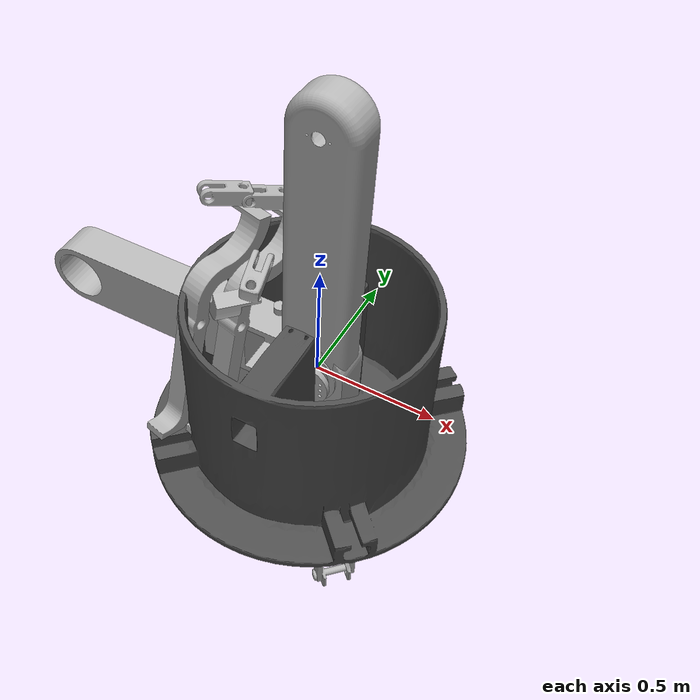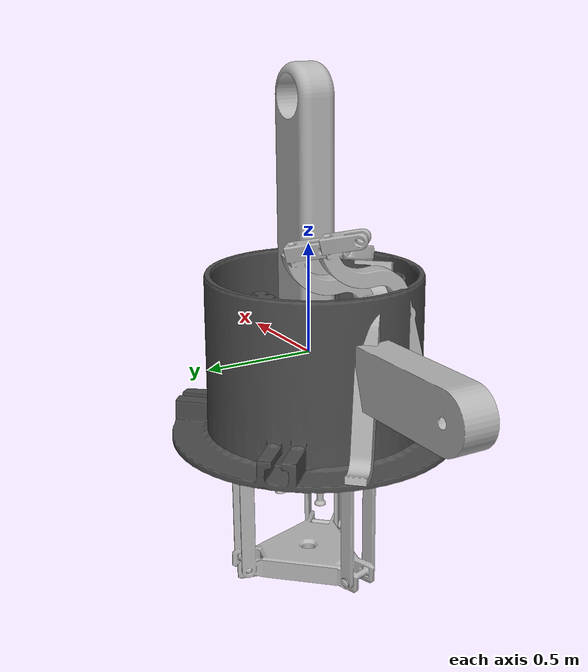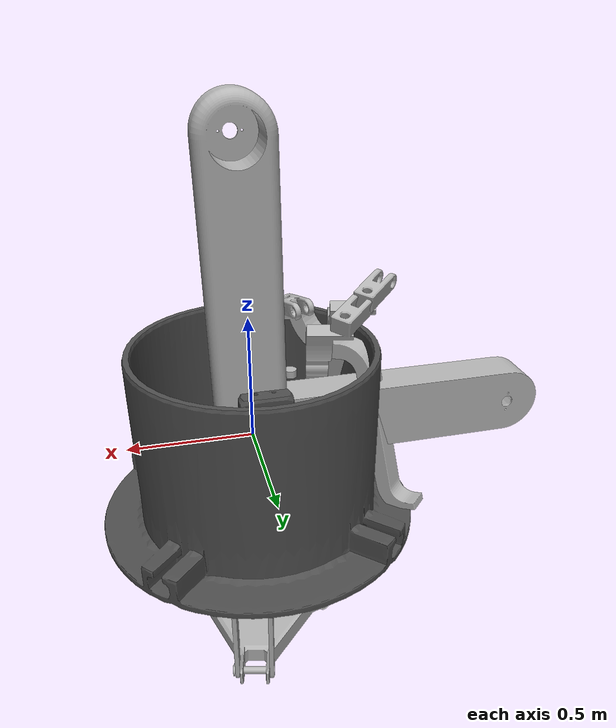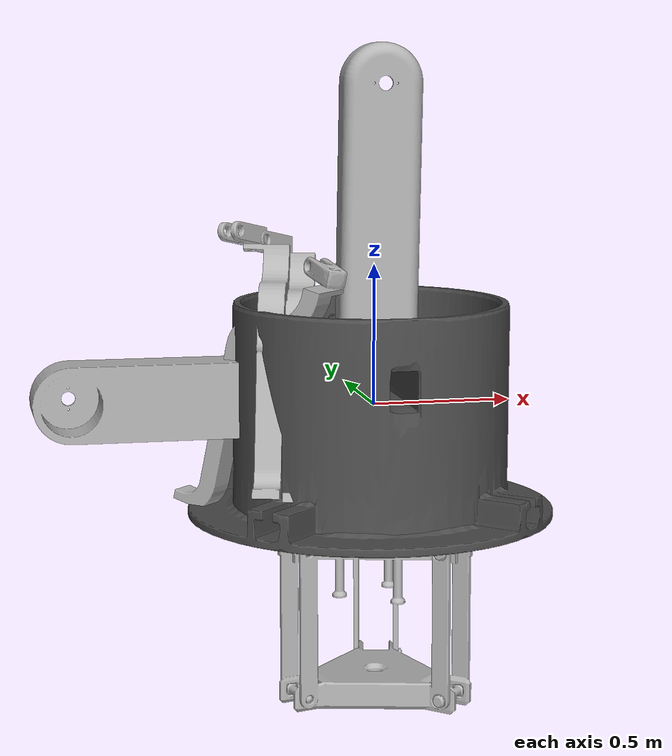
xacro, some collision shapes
<?xml version="1.0"?>
<robot name="arduinobot" xmlns:xacro="http://www.ros.org/wiki/xacro">

    <!-- Define common properties -->
    <xacro:property name="PI" value="3.141592653589793"/>
    <xacro:property name="PI_2" value="${PI / 2.0}"/>
    <xacro:property name="PI_4" value="${PI / 4.0}"/>
    <xacro:property name="effort" value="30.0"/>
    <xacro:property name="velocity" value="10.0"/>

    <!-- Include the base robot description -->
    <xacro:include filename="$(find arduinobot_description)/urdf/arduinobot.urdf.xacro"/>

    <!-- Include the ros2_control elements -->
    <xacro:include filename="$(find arduinobot_description)/urdf/arduinobot_ros2_control.xacro"/>

    <!-- Include the Gazebo specific elements -->
    <xacro:include filename="$(find arduinobot_description)/urdf/arduinobot_gazebo.xacro"/>

</robot>

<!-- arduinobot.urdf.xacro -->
<robot xmlns:xacro="http://www.ros.org/wiki/xacro" name="arduinobot">

    <xacro:arg name="use_gazebo" default="false"/>

    <!-- Include properties first -->
    <xacro:include filename="$(find arduinobot_description)/urdf/properties.xacro"/>

    <!-- Import robot parts -->
    <xacro:include filename="$(find arduinobot_description)/urdf/base_and_base_plate.xacro"/>
    <xacro:include filename="$(find arduinobot_description)/urdf/arms.xacro"/>
    <xacro:include filename="$(find arduinobot_description)/urdf/connectors.xacro"/>
    <xacro:include filename="$(find arduinobot_description)/urdf/grippers.xacro"/>

    <!-- Import Gazebo elements if needed -->
    <xacro:if value="$(arg use_gazebo)">
        <xacro:include filename="$(find arduinobot_description)/urdf/arduinobot_gazebo.xacro"/>
    </xacro:if>

</robot>

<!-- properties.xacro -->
<robot xmlns:xacro="http://www.ros.org/wiki/xacro">
    <!-- Constants -->
    <xacro:property name="PI" value="3.14159"/>
    <xacro:property name="PI_2" value="${PI/2}"/>
    <xacro:property name="PI_4" value="${PI/4}"/>

    <!-- Joint properties -->
    <xacro:property name="effort" value="30.0"/>
    <xacro:property name="velocity" value="10.0"/>

    <!-- Mark that properties are included -->
    <xacro:property name="properties_included" value="1"/>
</robot>

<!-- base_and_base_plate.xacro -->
<robot xmlns:xacro="http://www.ros.org/wiki/xacro" name="arduinobot">

    <link name="world"/>
    <!-- Base Link -->
    <link name="base_link">
        <visual>
            <origin rpy="0 0 0" xyz="0 0 0"/>
            <geometry>
                <mesh filename="package://arduinobot_description/meshes/basement_1.dae" scale="5 5 5"/>
            </geometry>
            <material name="dark_grey">
                <color rgba="0.3 0.3 0.3 1.0"/>
            </material>
        </visual>
        <collision>
            <origin rpy="0 0 0" xyz="0 0 0"/>
            <geometry>
                <cylinder radius="0.06" length="0.04"/>
            </geometry>
        </collision>
        <inertial>
            <origin xyz="0 0 0.02" rpy="0 0 0"/>
            <mass value="0.5"/>
            <inertia ixx="0.00015" ixy="0.0" ixz="0.0"
                    iyy="0.00015" iyz="0.0"
                    izz="0.00025"/>
        </inertial>
    </link>

    <joint name="virtual_joint" type="fixed">
        <parent link="world"/>
        <child link="base_link"/>
        <origin rpy="0 0 0" xyz="0 0 0"/>
    </joint>

    <!-- Base Plate -->
    <link name="base_plate">
        <visual>
            <origin rpy="0 0 0" xyz="0 0 0"/>
            <geometry>
                <mesh filename="package://arduinobot_description/meshes/base_plate_2.dae" scale="5 5 5"/>
            </geometry>
            <material name="blue">
                <color rgba="0.2 0.2 0.8 1.0"/>
            </material>
        </visual>
        <collision>
            <origin rpy="0 0 0" xyz="0 0 0"/>
            <geometry>
                <cylinder radius="0.04" length="0.04"/>
            </geometry>
        </collision>
        <inertial>
            <origin xyz="0 0 0" rpy="0 0 0"/>
            <mass value="0.3"/>
            <inertia ixx="0.0001" ixy="0.0" ixz="0.0"
                    iyy="0.0001" iyz="0.0"
                    izz="0.00015"/>
        </inertial>
    </link>

    <joint name="base_to_base_plate" type="revolute">
        <parent link="base_link"/>
        <child link="base_plate"/>
        <origin rpy="0 0 0" xyz="0 0 0.009"/>
        <axis xyz="0 0 1"/>
        <limit lower="-${PI_2}" upper="${PI_2}" effort="${effort}" velocity="${velocity}"/>
        <dynamics damping="0.5" friction="0.1"/>
    </joint>
</robot>

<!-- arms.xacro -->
<robot xmlns:xacro="http://www.ros.org/wiki/xacro">

    <!-- Include properties file -->
    <xacro:include filename="$(find arduinobot_description)/urdf/properties.xacro"/>

    <!-- Arm 1 -->
    <link name="arm_1">
        <visual>
            <origin rpy="0 0 0" xyz="0 0 0"/>
            <geometry>
                <mesh filename="package://arduinobot_description/meshes/arm_1.dae" scale="5 5 5"/>
            </geometry>
            <material name="grey">
                <color rgba="0.7 0.7 0.7 1.0"/>
            </material>
        </visual>
        <collision>
            <origin rpy="0 0 0" xyz="0 0 0"/>
            <geometry>
                <box size="0.03 0.03 0.15"/>
            </geometry>
        </collision>
        <inertial>
            <origin xyz="0 0 0" rpy="0 0 0"/>
            <mass value="0.25"/>
            <inertia ixx="0.0003" ixy="0.0" ixz="0.0"
                    iyy="0.0003" iyz="0.0"
                    izz="0.00001"/>
        </inertial>
    </link>

    <joint name="base_plate_to_arm_1" type="revolute">
        <parent link="base_plate"/>
        <child link="arm_1"/>
        <origin rpy="0 0 0" xyz="0 0 0.0012"/>
        <axis xyz="0 1 0"/>
        <limit lower="-${PI/3}" upper="${PI/3}" effort="${effort}" velocity="${velocity}"/>
        <dynamics damping="0.5" friction="0.1"/>
    </joint>

    <!-- Arm 2 -->
    <link name="arm_2">
        <visual>
            <origin rpy="0 0 0" xyz="0 0 0"/>
            <geometry>
                <mesh filename="package://arduinobot_description/meshes/arm_2.dae" scale="5 5 5"/>
            </geometry>
            <material name="grey">
                <color rgba="0.7 0.7 0.7 1.0"/>
            </material>
        </visual>
        <collision>
            <origin rpy="0 0 0" xyz="0 0 0"/>
            <geometry>
                <box size="0.03 0.03 0.15"/>
            </geometry>
        </collision>
        <inertial>
            <origin xyz="0 0 0" rpy="0 0 0"/>
            <mass value="0.2"/>
            <inertia ixx="0.0002" ixy="0.0" ixz="0.0"
                    iyy="0.0002" iyz="0.0"
                    izz="0.00001"/>
        </inertial>
    </link>

    <joint name="arm_1_to_arm_2" type="revolute">
        <parent link="arm_1"/>
        <child link="arm_2"/>
        <origin rpy="0 0 0" xyz="0 0 0.035"/>
        <axis xyz="0 1 0"/>
        <limit lower="-${PI/3}" upper="${PI/3}" effort="${effort}" velocity="${velocity}"/>
        <dynamics damping="0.5" friction="0.1"/>
    </joint>

    <!-- Arm 3 -->
    <link name="arm_3">
        <visual>
            <origin rpy="0 0 0" xyz="0 0 0"/>
            <geometry>
                <mesh filename="package://arduinobot_description/meshes/arm_3.dae" scale="5 5 5"/>
            </geometry>
            <material name="grey">
                <color rgba="0.7 0.7 0.7 1.0"/>
            </material>
        </visual>
        <collision>
            <origin rpy="0 0 0" xyz="0 0 0"/>
            <geometry>
                <box size="0.03 0.03 0.15"/>
            </geometry>
        </collision>
        <inertial>
            <origin xyz="0 0 0" rpy="0 0 0"/>
            <mass value="0.15"/>
            <inertia ixx="0.0002" ixy="0.0" ixz="0.0"
                    iyy="0.0002" iyz="0.0"
                    izz="0.00001"/>
        </inertial>
    </link>

    <joint name="arm_2_to_arm_3" type="revolute">
        <parent link="arm_2"/>
        <child link="arm_3"/>
        <origin rpy="0 0 0" xyz="0 0 0.035"/>
        <axis xyz="0 1 0"/>
        <limit lower="-${PI_2}" upper="${PI_2}" effort="${effort}" velocity="${velocity}"/>
        <dynamics damping="0.5" friction="0.1"/>
    </joint>

</robot>

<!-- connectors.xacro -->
<robot xmlns:xacro="http://ros.org/wiki/xacro">
    <!-- inner_circle -->
    <link name="inner_circle">
        <visual>
            <origin rpy="0 0 0" xyz="0 0 0"/>
            <geometry>
                <mesh filename="package://arduinobot_description/meshes/inner_circle.dae" scale="5 5 5"/>
            </geometry>
            <material name="grey">
                <color rgba="0.7 0.7 0.7 1.0"/>
            </material>
        </visual>
        <collision>
            <origin rpy="0 0 0" xyz="0 0 0"/>
            <geometry>
                <cylinder radius="0.025" length="0.03"/>
            </geometry>
        </collision>
        <inertial>
            <origin xyz="0 0 0" rpy="0 0 0"/>
            <mass value="0.1"/>
            <inertia ixx="0.00001" ixy="0.0" ixz="0.0"
                    iyy="0.00001" iyz="0.0"
                    izz="0.00001"/>
        </inertial>
    </link>

    <joint name="arm_2_to_inner_circle" type="revolute">
        <parent link="arm_2"/>
        <child link="inner_circle"/>
        <origin rpy="0 0 0" xyz="-0.16 -0.01 0.21"/>
        <axis xyz="1 0 0"/>
        <limit lower="-${PI}" upper="0.0" effort="${effort}" velocity="${velocity}"/>
        <dynamics damping="0.5" friction="0.1"/>
    </joint>

</robot>

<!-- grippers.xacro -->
<robot xmlns:xacro="http://www.ros.org/wiki/xacro">

    <!-- Gripper Links -->
    <link name="gripper_1">
        <visual>
            <origin rpy="0 0 0" xyz="0 0 0"/>
            <geometry>
                <mesh filename="package://arduinobot_description/meshes/gripper_1.dae" scale="5 5 5"/>
            </geometry>
            <material name="grey">
                <color rgba="0.7 0.7 0.7 1.0"/>
            </material>
        </visual>
        <collision>
            <origin rpy="0 0 0" xyz="0 0 0"/>
            <geometry>
                <box size="0.02 0.04 0.02"/>
            </geometry>
        </collision>
        <inertial>
            <origin xyz="0 0 0" rpy="0 0 0"/>
            <mass value="0.05"/>
            <inertia ixx="0.00001" ixy="0.0" ixz="0.0"
                    iyy="0.00002" iyz="0.0"
                    izz="0.00001"/>
        </inertial>
    </link>

    <link name="gripper_2">
        <visual>
            <origin rpy="0 0 0" xyz="0 0 0"/>
            <geometry>
                <mesh filename="package://arduinobot_description/meshes/gripper_2.dae" scale="5 5 5"/>
            </geometry>
            <material name="grey"/>
        </visual>
        <collision>
            <origin rpy="0 0 0" xyz="0 0 0"/>
            <geometry>
                <box size="0.02 0.04 0.02"/>
            </geometry>
        </collision>
        <inertial>
            <origin xyz="0 0 0" rpy="0 0 0"/>
            <mass value="0.05"/>
            <inertia ixx="0.00001" ixy="0.0" ixz="0.0"
                    iyy="0.00002" iyz="0.0"
                    izz="0.00001"/>
        </inertial>
    </link>

    <link name="gripper_3">
        <visual>
            <origin rpy="0 0 0" xyz="0 0 0"/>
            <geometry>
                <mesh filename="package://arduinobot_description/meshes/gripper_3.dae" scale="5 5 5"/>
            </geometry>
            <material name="grey"/>
        </visual>
        <collision>
            <origin rpy="0 0 0" xyz="0 0 0"/>
            <geometry>
                <box size="0.02 0.04 0.02"/>
            </geometry>
        </collision>
        <inertial>
            <origin xyz="0 0 0" rpy="0 0 0"/>
            <mass value="0.05"/>
            <inertia ixx="0.00001" ixy="0.0" ixz="0.0"
                    iyy="0.00002" iyz="0.0"
                    izz="0.00001"/>
        </inertial>
    </link>

    <!-- Gripper Joints -->
    <joint name="inner_circle_to_gripper_1" type="revolute">
        <parent link="inner_circle"/>
        <child link="gripper_1"/>
        <origin rpy="0 0 0" xyz="-0.08 -0.06 0.19"/>
        <axis xyz="1 0 0"/>
        <limit lower="-${PI/2}" upper="${PI/2}" effort="${effort}" velocity="${velocity}"/>
        <mimic joint="arm_2_to_inner_circle" multiplier="-1" offset="0"/>
        <dynamics damping="0.5" friction="0.1"/>
    </joint>

    <joint name="inner_circle_to_gripper_2" type="revolute">
        <parent link="inner_circle"/>
        <child link="gripper_2"/>
        <origin rpy="0 0 0" xyz="-0.17 0.09 0.17"/>
        <axis xyz="1 0 0"/>
        <limit lower="-${PI/2}" upper="${PI/2}" effort="${effort}" velocity="${velocity}"/>
        <mimic joint="arm_2_to_inner_circle" multiplier="-1" offset="0"/>
        <dynamics damping="0.5" friction="0.1"/>
    </joint>

    <joint name="inner_circle_to_gripper_3" type="revolute">
        <parent link="inner_circle"/>
        <child link="gripper_3"/>
        <origin rpy="0 0 ${4*PI/3}" xyz="-0.27 -0.04 0.16"/>
        <axis xyz="1 0 0"/>
        <limit lower="-${PI/2}" upper="${PI/2}" effort="${effort}" velocity="${velocity}"/>
        <mimic joint="arm_2_to_inner_circle" multiplier="-1" offset="0"/>
        <dynamics damping="0.5" friction="0.1"/>
    </joint>

</robot>
